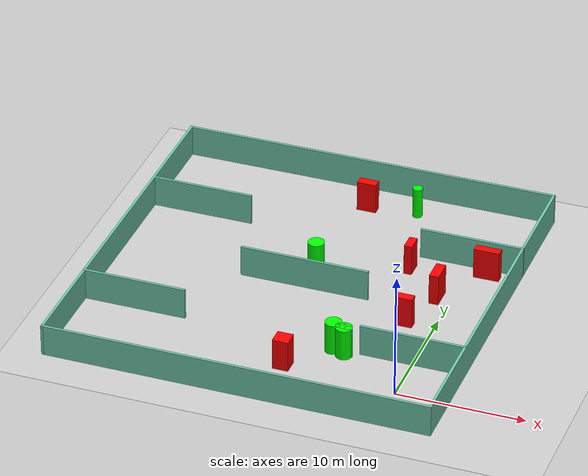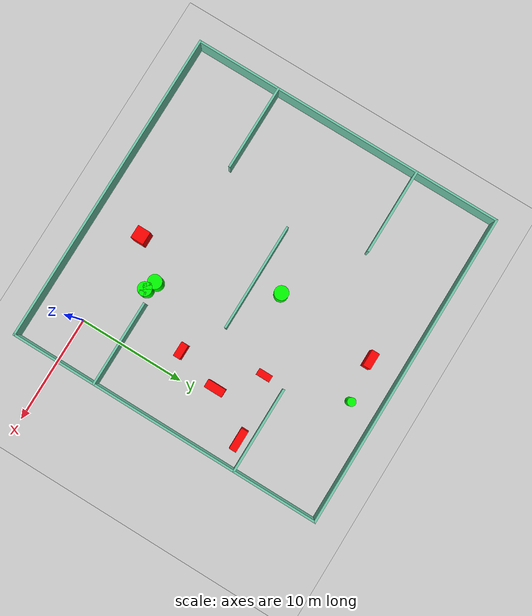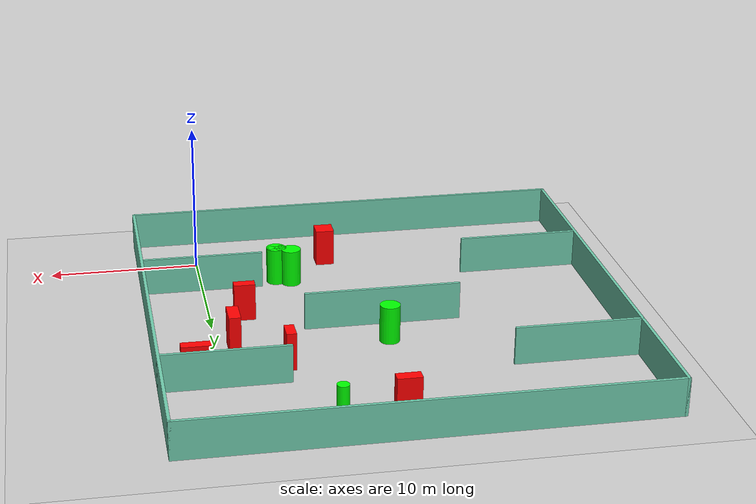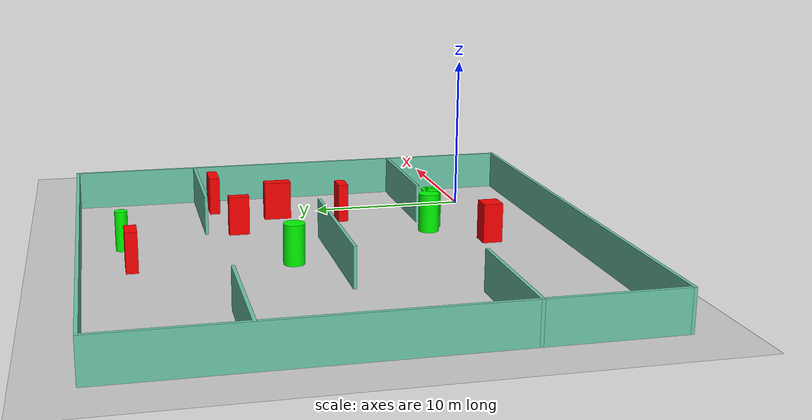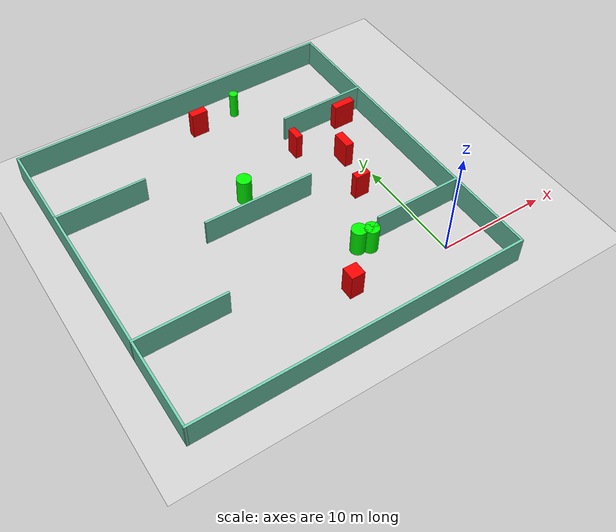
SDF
<sdf version="1.7">
 <world name="default">
  <light name="sun" type="directional">
   <pose>0 0 10 0 -0 0</pose>
   <diffuse>0.8 0.8 0.8 1</diffuse>
   <specular>0.2 0.2 0.2 1</specular>
   <attenuation>
    <range>1000</range>
    <constant>0.9</constant>
    <linear>0.01</linear>
    <quadratic>0.001</quadratic>
   </attenuation>
   <direction>-0.5 0.1 -0.9</direction>
   <spot><inner_angle>0</inner_angle><outer_angle>0</outer_angle><falloff>0</falloff></spot>
  </light>
  <model name="ground_plane">
   <static>1</static>
   <link name="link">
    <collision name="collision">
     <geometry><plane><normal>0 0 1</normal><size>100 100</size></plane></geometry>
     <surface>
      <contact><collide_bitmask>65535</collide_bitmask></contact>
      <friction><ode><mu>100</mu><mu2>50</mu2></ode></friction>
     </surface>
    </collision>
    <visual name="visual">
     <cast_shadows>0</cast_shadows>
     <geometry><plane><normal>0 0 1</normal><size>100 100</size></plane></geometry>
     <material>
      <script><uri>file://media/materials/scripts/gazebo.material</uri><name>Gazebo/Grey</name></script>
     </material>
    </visual>
   </link>
  </model>
  <gravity>0 0 -9.8</gravity>
  <magnetic_field>6e-06 2.3e-05 -4.2e-05</magnetic_field>
  <atmosphere type="adiabatic"/>
  <physics type="ode">
   <max_step_size>0.001</max_step_size>
   <real_time_factor>1</real_time_factor>
   <real_time_update_rate>1000</real_time_update_rate>
  </physics>
  <scene><ambient>0.4 0.4 0.4 1</ambient><background>0.7 0.7 0.7 1</background><shadows>1</shadows></scene>
  <spherical_coordinates>
   <surface_model>EARTH_WGS84</surface_model>
   <latitude_deg>0</latitude_deg>
   <longitude_deg>0</longitude_deg>
   <elevation>0</elevation>
   <heading_deg>0</heading_deg>
  </spherical_coordinates>
  <model name="my_base_walls">
   <link name="Wall_10">
    <collision name="Wall_10_Collision">
     <geometry><box><size>8.2 0.2 2.5</size></box></geometry>
     <pose>0 0 1.25 0 -0 0</pose>
    </collision>
    <visual name="Wall_10_Visual">
     <pose>0 0 1.25 0 -0 0</pose>
     <geometry><box><size>8.2 0.2 2.5</size></box></geometry>
     <material>
      <script><uri>file://media/materials/scripts/gazebo.material</uri><name>Gazebo/Grey</name></script>
      <ambient>0.435294 0.796078 0.67451 1</ambient>
     </material>
     <meta><layer>0</layer></meta>
    </visual>
    <pose>-11 -7 0 0 -0 0</pose>
   </link>
   <link name="Wall_12">
    <collision name="Wall_12_Collision">
     <geometry><box><size>8.2 0.2 2.5</size></box></geometry>
     <pose>0 0 1.25 0 -0 0</pose>
    </collision>
    <visual name="Wall_12_Visual">
     <pose>0 0 1.25 0 -0 0</pose>
     <geometry><box><size>8.2 0.2 2.5</size></box></geometry>
     <material>
      <script><uri>file://media/materials/scripts/gazebo.material</uri><name>Gazebo/Grey</name></script>
      <ambient>0.435294 0.796078 0.67451 1</ambient>
     </material>
     <meta><layer>0</layer></meta>
    </visual>
    <pose>-11 7 0 0 -0 0</pose>
   </link>
   <link name="Wall_14">
    <collision name="Wall_14_Collision">
     <geometry><box><size>8.2 0.2 2.5</size></box></geometry>
     <pose>0 0 1.25 0 -0 0</pose>
    </collision>
    <visual name="Wall_14_Visual">
     <pose>0 0 1.25 0 -0 0</pose>
     <geometry><box><size>8.2 0.2 2.5</size></box></geometry>
     <material>
      <script><uri>file://media/materials/scripts/gazebo.material</uri><name>Gazebo/Grey</name></script>
      <ambient>0.435294 0.796078 0.67451 1</ambient>
     </material>
     <meta><layer>0</layer></meta>
    </visual>
    <pose>11 7 0 0 -0 3.14159</pose>
   </link>
   <link name="Wall_16">
    <collision name="Wall_16_Collision">
     <geometry><box><size>10.2 0.2 2.5</size></box></geometry>
     <pose>0 0 1.25 0 -0 0</pose>
    </collision>
    <visual name="Wall_16_Visual">
     <pose>0 0 1.25 0 -0 0</pose>
     <geometry><box><size>10.2 0.2 2.5</size></box></geometry>
     <material>
      <script><uri>file://media/materials/scripts/gazebo.material</uri><name>Gazebo/Grey</name></script>
      <ambient>0.435294 0.796078 0.67451 1</ambient>
     </material>
     <meta><layer>0</layer></meta>
    </visual>
    <pose>0 0 0 0 -0 3.14159</pose>
   </link>
   <link name="Wall_2">
    <collision name="Wall_2_Collision">
     <geometry><box><size>30.2 0.2 2.5</size></box></geometry>
     <pose>0 0 1.25 0 -0 0</pose>
    </collision>
    <visual name="Wall_2_Visual">
     <pose>0 0 1.25 0 -0 0</pose>
     <geometry><box><size>30.2 0.2 2.5</size></box></geometry>
     <material>
      <script><uri>file://media/materials/scripts/gazebo.material</uri><name>Gazebo/Grey</name></script>
      <ambient>0.435294 0.796078 0.67451 1</ambient>
     </material>
     <meta><layer>0</layer></meta>
    </visual>
    <pose>0 -15 0 0 -0 3.14159</pose>
   </link>
   <link name="Wall_3">
    <collision name="Wall_3_Collision">
     <geometry><box><size>30.2 0.2 2.5</size></box></geometry>
     <pose>0 0 1.25 0 -0 0</pose>
    </collision>
    <visual name="Wall_3_Visual">
     <pose>0 0 1.25 0 -0 0</pose>
     <geometry><box><size>30.2 0.2 2.5</size></box></geometry>
     <material>
      <script><uri>file://media/materials/scripts/gazebo.material</uri><name>Gazebo/Grey</name></script>
      <ambient>0.435294 0.796078 0.67451 1</ambient>
     </material>
     <meta><layer>0</layer></meta>
    </visual>
    <pose>-15 0 0 0 -0 1.5708</pose>
   </link>
   <link name="Wall_4">
    <collision name="Wall_4_Collision">
     <geometry><box><size>30.2 0.2 2.5</size></box></geometry>
     <pose>0 0 1.25 0 -0 0</pose>
    </collision>
    <visual name="Wall_4_Visual">
     <pose>0 0 1.25 0 -0 0</pose>
     <geometry><box><size>30.2 0.2 2.5</size></box></geometry>
     <material>
      <script><uri>file://media/materials/scripts/gazebo.material</uri><name>Gazebo/Grey</name></script>
      <ambient>0.435294 0.796078 0.67451 1</ambient>
     </material>
     <meta><layer>0</layer></meta>
    </visual>
    <pose>0 15 0 0 -0 0</pose>
   </link>
   <link name="Wall_6">
    <collision name="Wall_6_Collision">
     <geometry><box><size>30.2 0.2 2.5</size></box></geometry>
     <pose>0 0 1.25 0 -0 0</pose>
    </collision>
    <visual name="Wall_6_Visual">
     <pose>0 0 1.25 0 -0 0</pose>
     <geometry><box><size>30.2 0.2 2.5</size></box></geometry>
     <material>
      <script><uri>file://media/materials/scripts/gazebo.material</uri><name>Gazebo/Grey</name></script>
      <ambient>0.435294 0.796078 0.67451 1</ambient>
     </material>
     <meta><layer>0</layer></meta>
    </visual>
    <pose>15 0 0 0 -0 1.5708</pose>
   </link>
   <link name="Wall_8">
    <collision name="Wall_8_Collision">
     <geometry><box><size>8.2 0.2 2.5</size></box></geometry>
     <pose>0 0 1.25 0 -0 0</pose>
    </collision>
    <visual name="Wall_8_Visual">
     <pose>0 0 1.25 0 -0 0</pose>
     <geometry><box><size>8.2 0.2 2.5</size></box></geometry>
     <material>
      <script><uri>file://media/materials/scripts/gazebo.material</uri><name>Gazebo/Grey</name></script>
      <ambient>0.435294 0.796078 0.67451 1</ambient>
     </material>
     <meta><layer>0</layer></meta>
    </visual>
    <pose>11 -7 0 0 -0 3.14159</pose>
   </link>
   <static>1</static>
   <pose>-11 11 0 0 -0 0</pose>
  </model>
  <model name="cylinder1">
   <static>1</static>
   <link name="link">
    <inertial>
     <mass>1</mass>
     <inertia><ixx>0.5</ixx><ixy>0</ixy><ixz>0</ixz><iyy>0.5</iyy><iyz>0</iyz><izz>1</izz></inertia>
    </inertial>
    <collision name="collision">
     <geometry><cylinder><radius>0.6450335806313245</radius><length>2.5</length></cylinder></geometry>
    </collision>
    <visual name="visual">
     <geometry><cylinder><radius>0.6450335806313245</radius><length>2.5</length></cylinder></geometry>
     <material>
      <ambient>0 1 0 1</ambient>
      <diffuse>0 1 0 1</diffuse>
      <specular>0.1 0.1 0.1 1</specular>
      <emissive>0 0 0 0</emissive>
     </material>
    </visual>
   </link>
   <pose>-5.136376241508973 3.3893467478635104 1.25 0 0 0</pose>
  </model>
  <model name="cylinder2">
   <static>1</static>
   <link name="link">
    <inertial>
     <mass>1</mass>
     <inertia><ixx>0.5</ixx><ixy>0</ixy><ixz>0</ixz><iyy>0.5</iyy><iyz>0</iyz><izz>1</izz></inertia>
    </inertial>
    <collision name="collision">
     <geometry><cylinder><radius>0.6589918171164173</radius><length>2.5</length></cylinder></geometry>
    </collision>
    <visual name="visual">
     <geometry><cylinder><radius>0.6589918171164173</radius><length>2.5</length></cylinder></geometry>
     <material>
      <ambient>0 1 0 1</ambient>
      <diffuse>0 1 0 1</diffuse>
      <specular>0.1 0.1 0.1 1</specular>
      <emissive>0 0 0 0</emissive>
     </material>
    </visual>
   </link>
   <pose>-6.105679438828668 3.8072659310223713 1.25 0 0 0</pose>
  </model>
  <model name="cylinder3">
   <static>1</static>
   <link name="link">
    <inertial>
     <mass>1</mass>
     <inertia><ixx>0.5</ixx><ixy>0</ixy><ixz>0</ixz><iyy>0.5</iyy><iyz>0</iyz><izz>1</izz></inertia>
    </inertial>
    <collision name="collision">
     <geometry><cylinder><radius>0.6549250981179106</radius><length>2.5</length></cylinder></geometry>
    </collision>
    <visual name="visual">
     <geometry><cylinder><radius>0.6549250981179106</radius><length>2.5</length></cylinder></geometry>
     <material>
      <ambient>0 1 0 1</ambient>
      <diffuse>0 1 0 1</diffuse>
      <specular>0.1 0.1 0.1 1</specular>
      <emissive>0 0 0 0</emissive>
     </material>
    </visual>
   </link>
   <pose>-10.971262572575556 13.526702084715112 1.25 0 0 0</pose>
  </model>
  <model name="cylinder4">
   <static>1</static>
   <link name="link">
    <inertial>
     <mass>1</mass>
     <inertia><ixx>0.5</ixx><ixy>0</ixy><ixz>0</ixz><iyy>0.5</iyy><iyz>0</iyz><izz>1</izz></inertia>
    </inertial>
    <collision name="collision">
     <geometry><cylinder><radius>0.3903167532772764</radius><length>2.5</length></cylinder></geometry>
    </collision>
    <visual name="visual">
     <geometry><cylinder><radius>0.3903167532772764</radius><length>2.5</length></cylinder></geometry>
     <material>
      <ambient>0 1 0 1</ambient>
      <diffuse>0 1 0 1</diffuse>
      <specular>0.1 0.1 0.1 1</specular>
      <emissive>0 0 0 0</emissive>
     </material>
    </visual>
   </link>
   <pose>-6.198049781709621 23.428152133657438 1.25 0 0 0</pose>
  </model>
  <model name="cylinder5">
   <static>1</static>
   <link name="link">
    <inertial>
     <mass>1</mass>
     <inertia><ixx>0.5</ixx><ixy>0</ixy><ixz>0</ixz><iyy>0.5</iyy><iyz>0</iyz><izz>1</izz></inertia>
    </inertial>
    <collision name="collision">
     <geometry><cylinder><radius>0.3127314075690548</radius><length>2.5</length></cylinder></geometry>
    </collision>
    <visual name="visual">
     <geometry><cylinder><radius>0.3127314075690548</radius><length>2.5</length></cylinder></geometry>
     <material>
      <ambient>0 1 0 1</ambient>
      <diffuse>0 1 0 1</diffuse>
      <specular>0.1 0.1 0.1 1</specular>
      <emissive>0 0 0 0</emissive>
     </material>
    </visual>
   </link>
   <pose>-4.789756823098969 3.3916405409408252 1.25 0 0 0</pose>
  </model>
  <model name="cylinder6">
   <static>1</static>
   <link name="link">
    <inertial>
     <mass>1</mass>
     <inertia><ixx>0.5</ixx><ixy>0</ixy><ixz>0</ixz><iyy>0.5</iyy><iyz>0</iyz><izz>1</izz></inertia>
    </inertial>
    <collision name="collision">
     <geometry><cylinder><radius>0.4257875053819846</radius><length>2.5</length></cylinder></geometry>
    </collision>
    <visual name="visual">
     <geometry><cylinder><radius>0.4257875053819846</radius><length>2.5</length></cylinder></geometry>
     <material>
      <ambient>0 1 0 1</ambient>
      <diffuse>0 1 0 1</diffuse>
      <specular>0.1 0.1 0.1 1</specular>
      <emissive>0 0 0 0</emissive>
     </material>
    </visual>
   </link>
   <pose>-5.426854682279245 3.4895451652353318 1.25 0 0 0</pose>
  </model>
  <model name="box1">
   <static>1</static>
   <link name="link">
    <inertial>
     <mass>1</mass>
     <inertia><ixx>0.083</ixx><ixy>0</ixy><ixz>0</ixz><iyy>0.083</iyy><iyz>0</iyz><izz>0.083</izz></inertia>
    </inertial>
    <collision name="collision">
     <geometry><box><size>0.6303403781370938 1.3025914395641816 2.5</size></box></geometry>
    </collision>
    <visual name="visual">
     <geometry><box><size>0.6303403781370938 1.3025914395641816 2.5</size></box></geometry>
     <material>
      <ambient>1 0 0 1</ambient>
      <diffuse>1 0 0 1</diffuse>
      <specular>0.1 0.1 0.1 1</specular>
      <emissive>0 0 0 0</emissive>
     </material>
    </visual>
    <sensor name="my_contact" type="contact">
     <contact><collision>box_collision</collision><topic>__default_topic__</topic></contact>
    </sensor>
   </link>
   <pose>-4.240637966573072 15.95174599740313 1.25 0 0 0</pose>
  </model>
  <model name="box2">
   <static>1</static>
   <link name="link">
    <inertial>
     <mass>1</mass>
     <inertia><ixx>0.083</ixx><ixy>0</ixy><ixz>0</ixz><iyy>0.083</iyy><iyz>0</iyz><izz>0.083</izz></inertia>
    </inertial>
    <collision name="collision">
     <geometry><box><size>1.388703228252865 0.668114177846053 2.5</size></box></geometry>
    </collision>
    <visual name="visual">
     <geometry><box><size>1.388703228252865 0.668114177846053 2.5</size></box></geometry>
     <material>
      <ambient>1 0 0 1</ambient>
      <diffuse>1 0 0 1</diffuse>
      <specular>0.1 0.1 0.1 1</specular>
      <emissive>0 0 0 0</emissive>
     </material>
    </visual>
    <sensor name="my_contact" type="contact">
     <contact><collision>box_collision</collision><topic>__default_topic__</topic></contact>
    </sensor>
   </link>
   <pose>-2.2895594744658077 8.793240739467864 1.25 0 0 0</pose>
  </model>
  <model name="box3">
   <static>1</static>
   <link name="link">
    <inertial>
     <mass>1</mass>
     <inertia><ixx>0.083</ixx><ixy>0</ixy><ixz>0</ixz><iyy>0.083</iyy><iyz>0</iyz><izz>0.083</izz></inertia>
    </inertial>
    <collision name="collision">
     <geometry><box><size>2.0204810550767878 0.6751352087998512 2.5</size></box></geometry>
    </collision>
    <visual name="visual">
     <geometry><box><size>2.0204810550767878 0.6751352087998512 2.5</size></box></geometry>
     <material>
      <ambient>1 0 0 1</ambient>
      <diffuse>1 0 0 1</diffuse>
      <specular>0.1 0.1 0.1 1</specular>
      <emissive>0 0 0 0</emissive>
     </material>
    </visual>
    <sensor name="my_contact" type="contact">
     <contact><collision>box_collision</collision><topic>__default_topic__</topic></contact>
    </sensor>
   </link>
   <pose>1.5594665826011465 16.973407721342944 1.25 0 0 0</pose>
  </model>
  <model name="box4">
   <static>1</static>
   <link name="link">
    <inertial>
     <mass>1</mass>
     <inertia><ixx>0.083</ixx><ixy>0</ixy><ixz>0</ixz><iyy>0.083</iyy><iyz>0</iyz><izz>0.083</izz></inertia>
    </inertial>
    <collision name="collision">
     <geometry><box><size>1.235978084181289 1.2325534522182464 2.5</size></box></geometry>
    </collision>
    <visual name="visual">
     <geometry><box><size>1.235978084181289 1.2325534522182464 2.5</size></box></geometry>
     <material>
      <ambient>1 0 0 1</ambient>
      <diffuse>1 0 0 1</diffuse>
      <specular>0.1 0.1 0.1 1</specular>
      <emissive>0 0 0 0</emissive>
     </material>
    </visual>
    <sensor name="my_contact" type="contact">
     <contact><collision>box_collision</collision><topic>__default_topic__</topic></contact>
    </sensor>
   </link>
   <pose>-8.890841962661812 0.6189120911073629 1.25 0 0 0</pose>
  </model>
  <model name="box5">
   <static>1</static>
   <link name="link">
    <inertial>
     <mass>1</mass>
     <inertia><ixx>0.083</ixx><ixy>0</ixy><ixz>0</ixz><iyy>0.083</iyy><iyz>0</iyz><izz>0.083</izz></inertia>
    </inertial>
    <collision name="collision">
     <geometry><box><size>1.5478252202751575 0.7349443591501927 2.5</size></box></geometry>
    </collision>
    <visual name="visual">
     <geometry><box><size>1.5478252202751575 0.7349443591501927 2.5</size></box></geometry>
     <material>
      <ambient>1 0 0 1</ambient>
      <diffuse>1 0 0 1</diffuse>
      <specular>0.1 0.1 0.1 1</specular>
      <emissive>0 0 0 0</emissive>
     </material>
    </visual>
    <sensor name="my_contact" type="contact">
     <contact><collision>box_collision</collision><topic>__default_topic__</topic></contact>
    </sensor>
   </link>
   <pose>-10.133117915293427 23.008540973923104 1.25 0 0 0</pose>
  </model>
  <model name="box6">
   <static>1</static>
   <link name="link">
    <inertial>
     <mass>1</mass>
     <inertia><ixx>0.083</ixx><ixy>0</ixy><ixz>0</ixz><iyy>0.083</iyy><iyz>0</iyz><izz>0.083</izz></inertia>
    </inertial>
    <collision name="collision">
     <geometry><box><size>0.7598514416921285 1.7500670072965652 2.5</size></box></geometry>
    </collision>
    <visual name="visual">
     <geometry><box><size>0.7598514416921285 1.7500670072965652 2.5</size></box></geometry>
     <material>
      <ambient>1 0 0 1</ambient>
      <diffuse>1 0 0 1</diffuse>
      <specular>0.1 0.1 0.1 1</specular>
      <emissive>0 0 0 0</emissive>
     </material>
    </visual>
    <sensor name="my_contact" type="contact">
     <contact><collision>box_collision</collision><topic>__default_topic__</topic></contact>
    </sensor>
   </link>
   <pose>-1.1011643937255577 12.960014412278914 1.25 0 0 0</pose>
  </model>
 </world>
</sdf>
